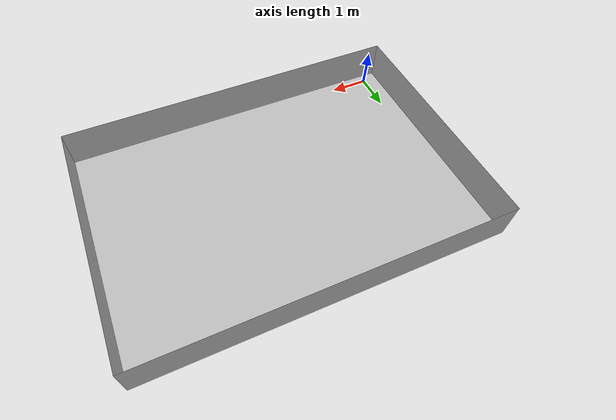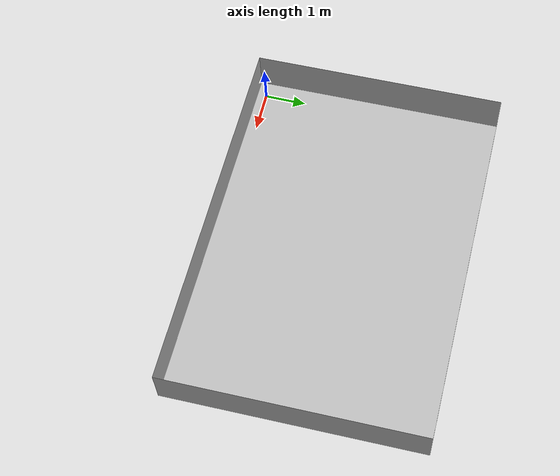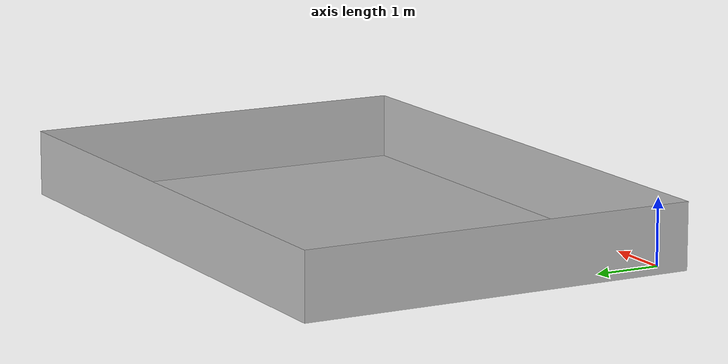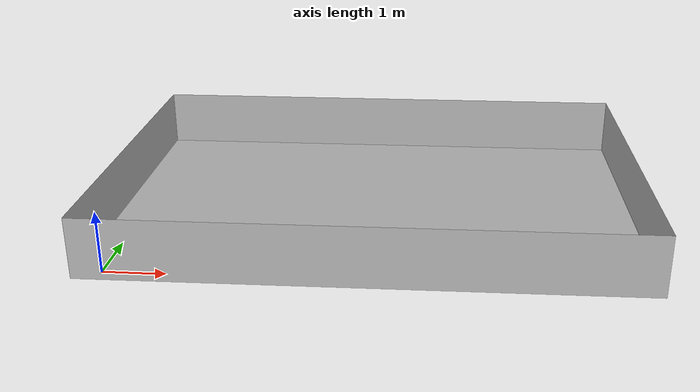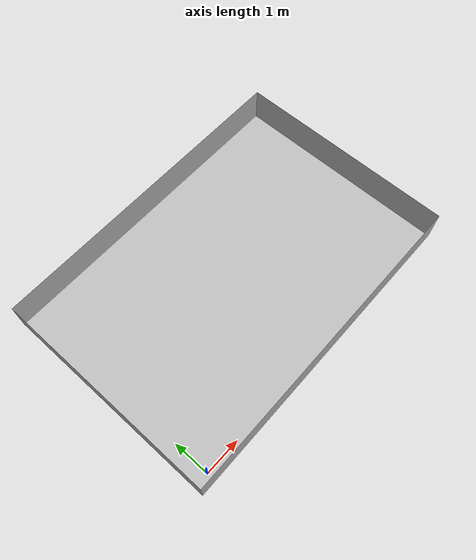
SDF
<?xml version="1.0"?>
<sdf version="1.4">
<world name="reInvent2019_wide_mirrored">

  <scene>
    <ambient>0.5 0.5 0.5 1.0</ambient>
    <shadows>0</shadows>
  </scene>

  <include>
    <uri>model://sun</uri>
    <pose>0.0 0.0 15.0 0 0 0</pose>
    <cast_shadows>false</cast_shadows>
    <attenuation>
      <constant>0.5</constant>
      <linear>0.01</linear>
      <quadratic>0.0</quadratic>
      <range>100</range>
    </attenuation>
  </include>

  <light type="point" name="Light 1">
    <pose>0 0 15 0 0 0</pose>
    <diffuse>.9 .9 .9 1</diffuse>
    <specular>.1 .1 .1 1</specular>
    <attenuation>
      <constant>0.4</constant>
      <linear>0.01</linear>
      <quadratic>0.00</quadratic>
      <range>50</range>
    </attenuation>
    <direction>0 0 -1</direction>
    <cast_shadows>false</cast_shadows>
  </light>

  <include>
    <uri>model://models/reInvent2019_wide_mirrored</uri>
    <pose>0 0 0 0 0 0</pose>
    <name>racetrack</name>
  </include>

</world>
</sdf>

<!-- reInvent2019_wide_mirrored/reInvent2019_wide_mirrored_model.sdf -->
<sdf version="1.4">
<model name="reInvent2019_wide_mirrored_model">
<link name="fullLink">
<collision name="collision">
<pose>0 0 0 0 0 0</pose>
<geometry>
<mesh>
<uri>model://meshes/reInvent2019_wide/reInvent2019_wide_mirrored.dae</uri>
</mesh>
</geometry>
</collision>
<visual name="visual">
<pose>0 0 0 0 0 0</pose>
<geometry>
<mesh>
<uri>model://meshes/reInvent2019_wide/reInvent2019_wide_mirrored.dae</uri>
</mesh>
</geometry>
</visual>
</link>
<static>1</static>
</model>
</sdf>
